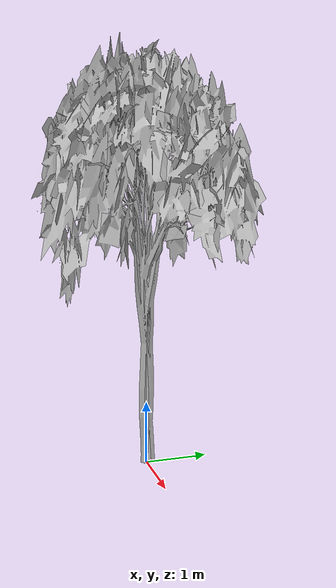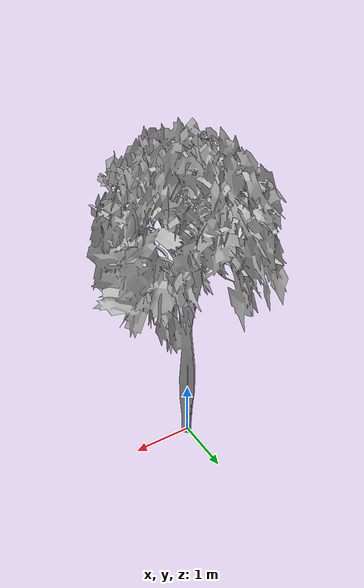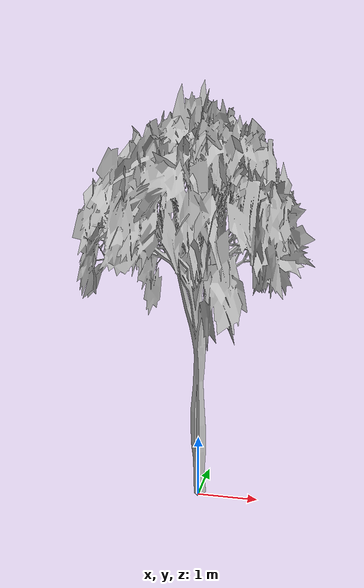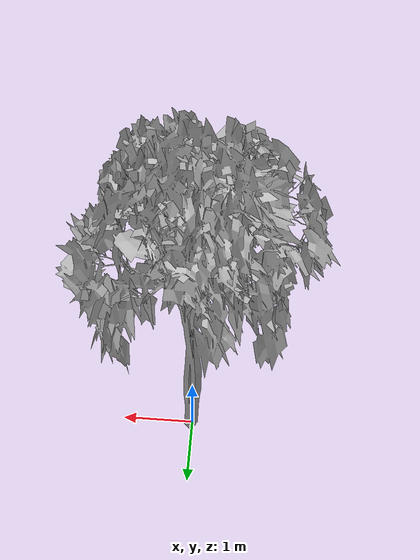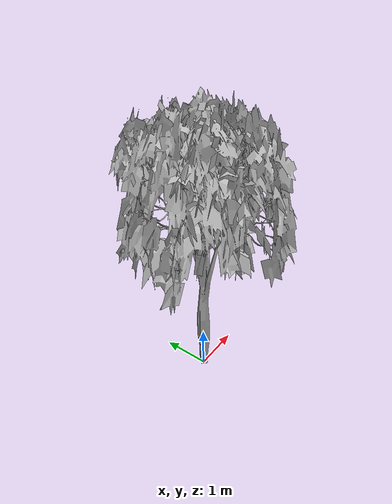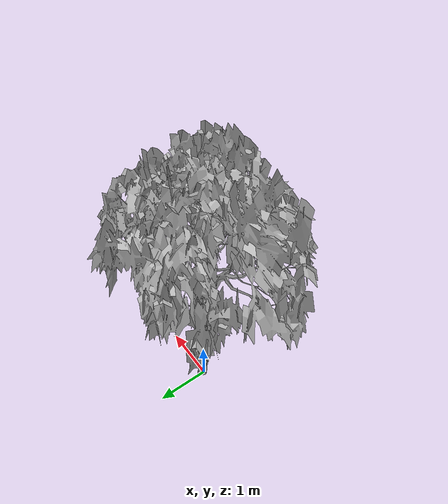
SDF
<?xml version="1.0" ?>
<sdf version="1.7">
  <model name="benchmark_fg_tree_2">
    <static>true</static>
    <link name="link">
      <!-- Physical trunk used by LiDAR; DAP=0.230 m. -->
      <collision name="collision_trunk">
        <pose>0 0 1.600000 0 0 0</pose>
        <geometry><cylinder><radius>0.115000</radius><length>3.200000</length></cylinder></geometry>
      </collision>
      <!-- Crown collision stays above the 2 m lawnmower flight plane. -->
      <collision name="collision_crown">
        <pose>0 0 4.700000 0 0 0</pose>
        <geometry><sphere><radius>1.650000</radius></sphere></geometry>
      </collision>
      <visual name="source_mesh_visual">
        <pose>-0.026000 0.004000 0.013500 1.570796327 0 0</pose>
        <geometry>
          <mesh>
            <uri>model://tree_2/meshes/tree_2.obj</uri>
            <scale>1.700000 2.700000 1.700000</scale>
          </mesh>
        </geometry>
      </visual>
    </link>
  </model>
</sdf>
